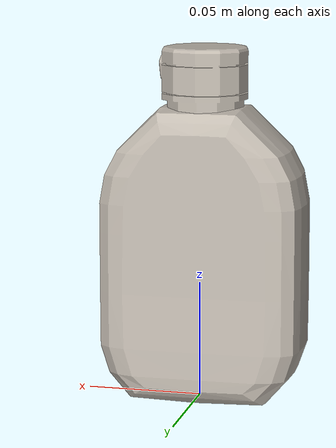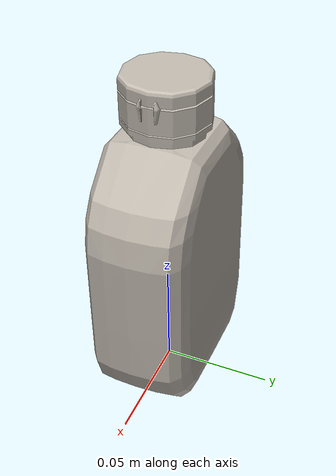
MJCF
<?xml version="1.0" encoding="utf-8"?>
<mujoco model="mustard">
  <compiler angle="radian" meshdir="assets" texturedir="assets" autolimits="true"/>
  <asset>
    <mesh file="mustard.obj"/>
    <texture type="2d" name="mustard" file="mustard.png"/>
    <material name="mustard" specular="0.2" shininess="0.2" texture="mustard"/>
  </asset>
  <default>
    <default class="mustard">
      <geom type="mesh" mass="0.1" solimp="0.95 0.98 0.001" solref="0.004 1"/>
      <default class="balance">
        <geom group="3" type="sphere" mass="0.1" size="0.01" pos="0 0 -0.02" contype="0" conaffinity="0"/>
      </default>
    </default>
  </default>
  <worldbody>
    <body name="mustard" childclass="mustard">
      <geom name="mustard" mesh="mustard" material="mustard" euler="1.5708 0 0"/>
      <geom class="balance"/>
    </body>
  </worldbody>
</mujoco>
